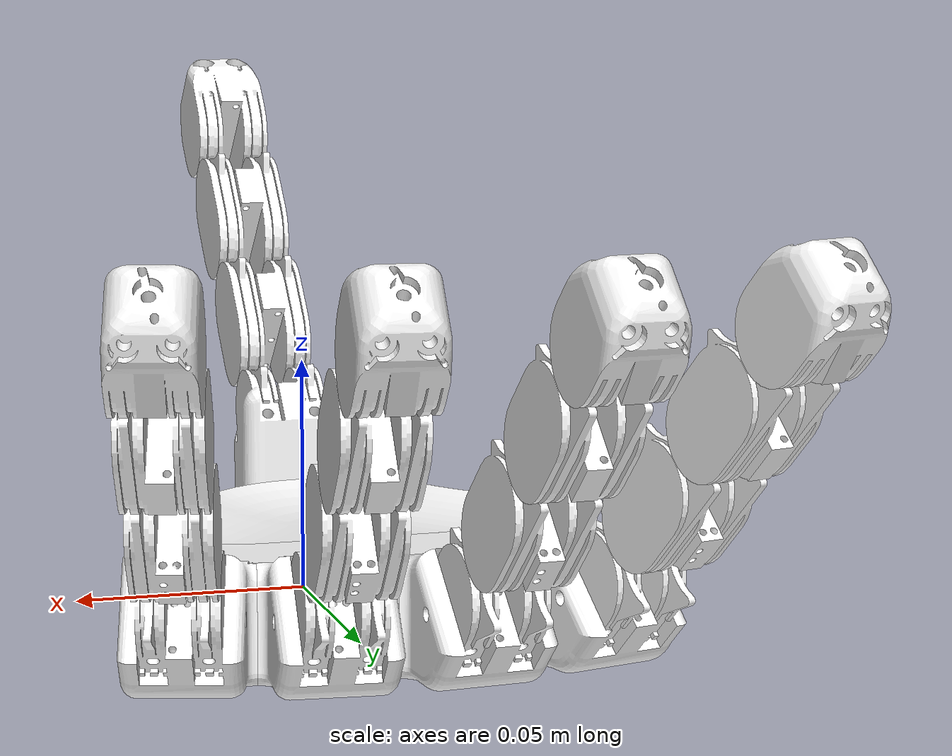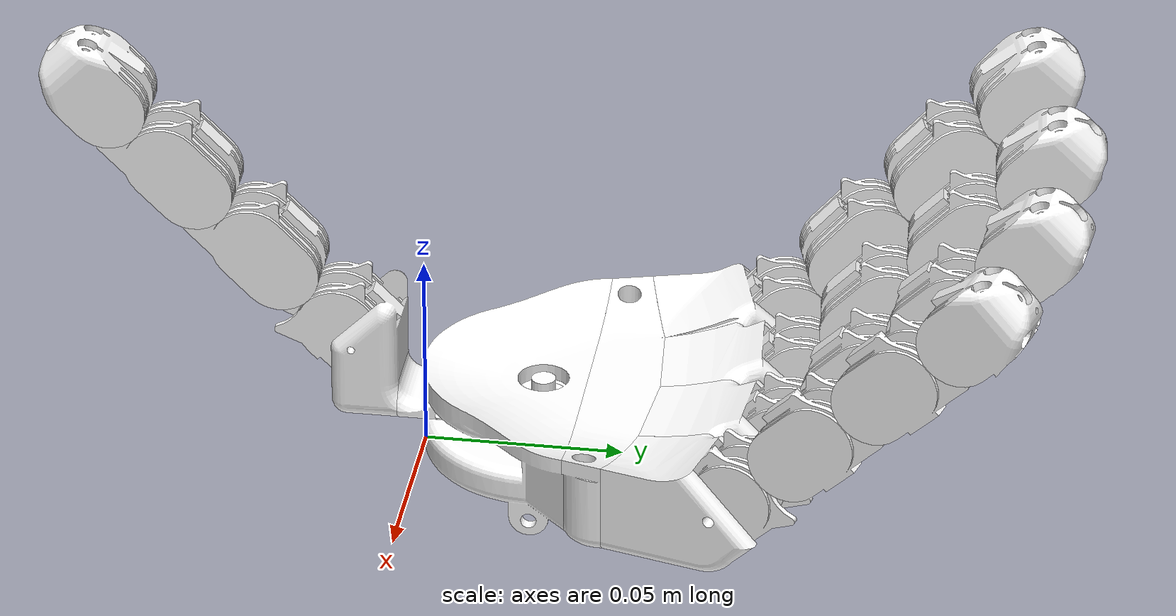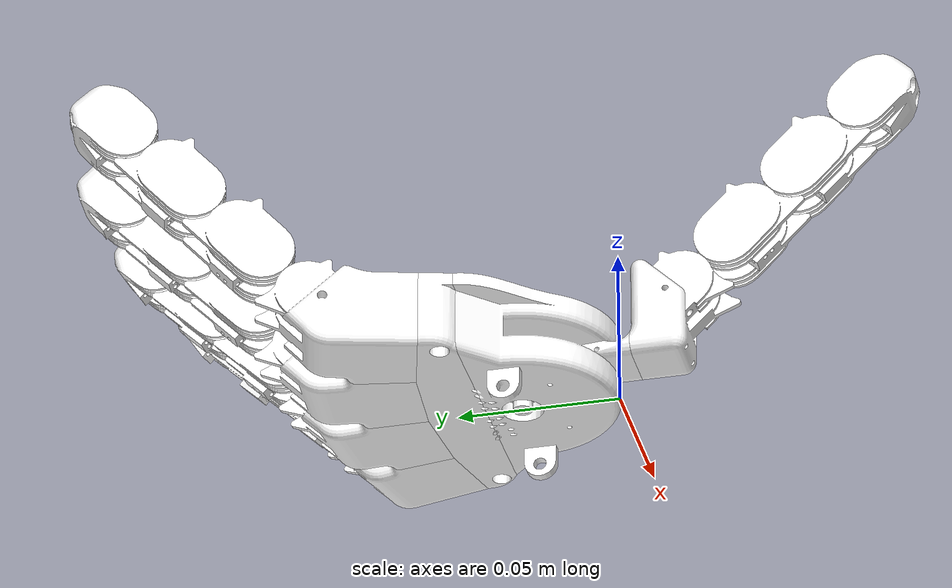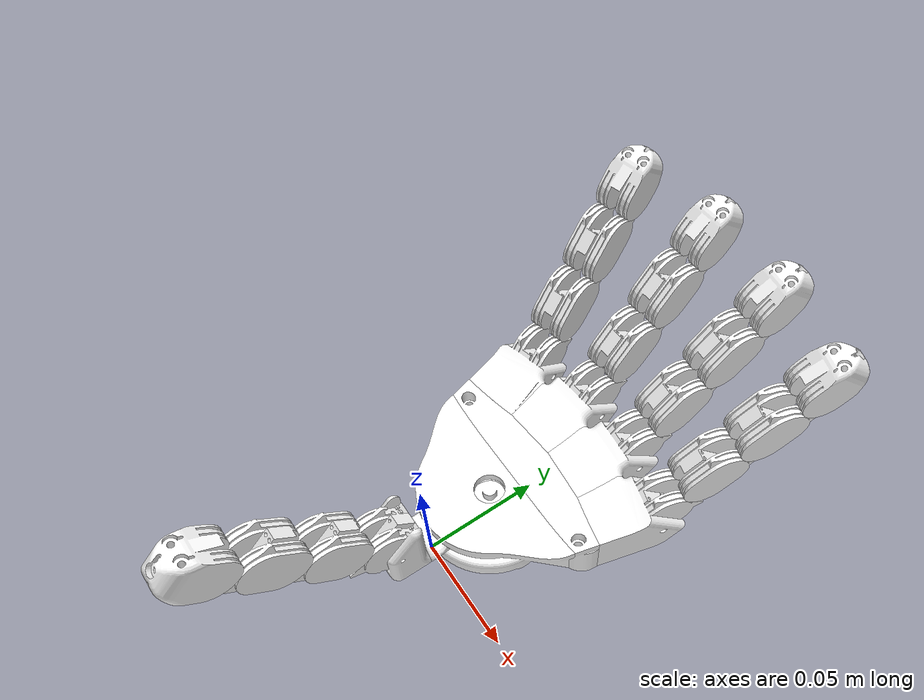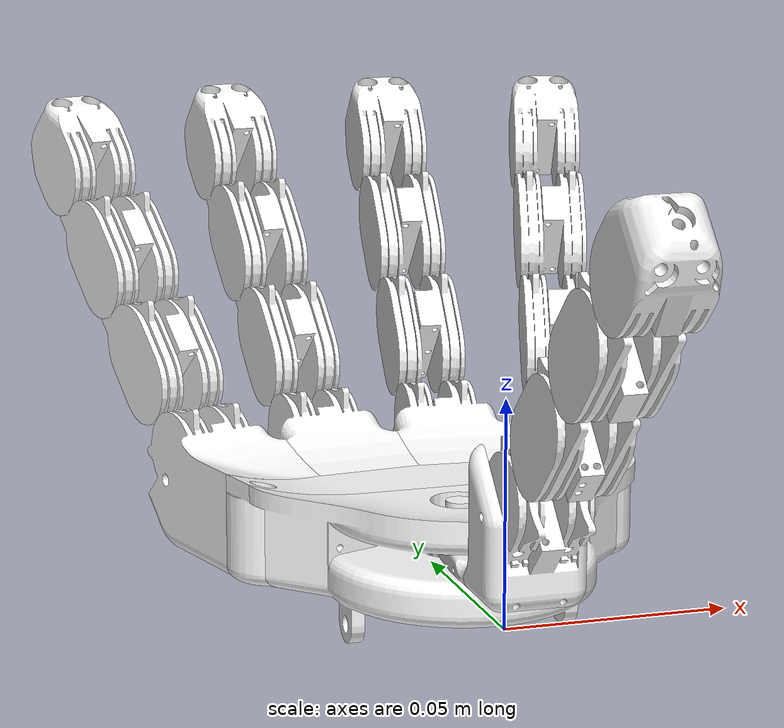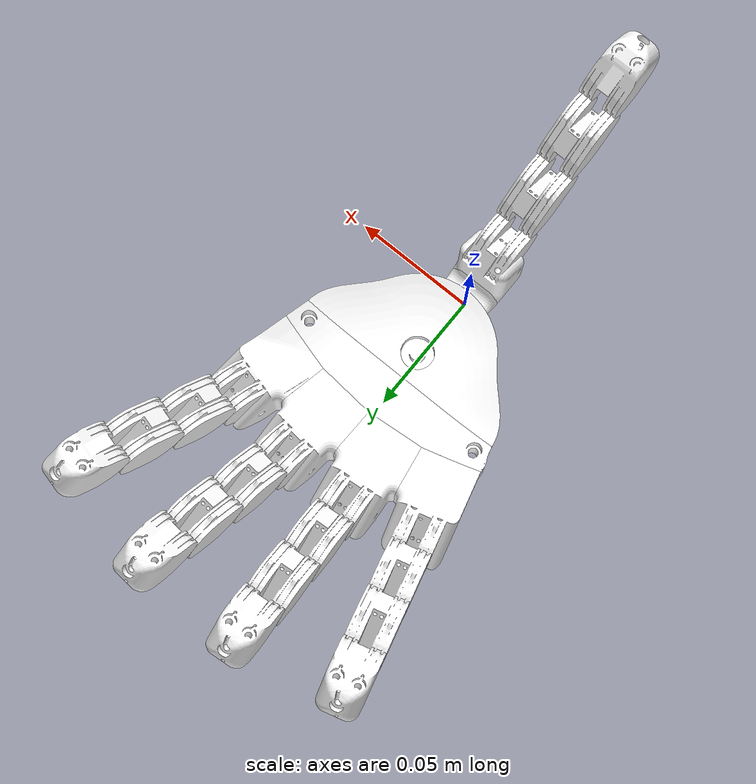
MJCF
<mujoco model="hand">

    <!--SETUP-->
    <compiler autolimits="true" angle="radian"/>
    <!--option collision="all"/-->
    <default>
        <!-- use same geom params as the Shadow Hand model in IsaacGymEnv for now -->
        <geom rgba="1 1 1 1" type="mesh" density="662" friction="0.005 0.005 1" condim="3" margin="0" contype="1" conaffinity="1"/>
        <!-- use same joint params as IsaacGymEnv for now -->
        <!-- TODO: joint damping and position control kp should eventually be set to sysID'ed values -->
        <joint type="hinge" limited="true" damping="0.05" armature="0.001" margin="0.001" frictionloss="0.001"/>
        <!-- actuator configuration -->
        <position ctrllimited="true" forcelimited="true" forcerange="-1 1" kp="2."/>
        <!-- the tendon which limits the two joints creating the rolling joint should be very limited in its length range -->
        <tendon limited="true" range="-0.001 0.001"/>
    </default>

    <!--ASSETS-->
    <asset>

        <mesh name="palm_front" file="mesh/Palm.stl" scale="0.001 0.001 0.001"/>
        <mesh name="palm_back" file="mesh/Palm2.stl" scale="0.001 0.001 0.001"/>

        <mesh name="plate" file="mesh/Plate.stl" scale="0.001 0.001 0.001"/>
        <mesh name="finger1_base" file="mesh/Finger1_base.stl" scale="0.001 0.001 0.001"/>
        <mesh name="finger1_pp" file="mesh/Finger1_pp.stl" scale="0.001 0.001 0.001"/>
        <mesh name="finger1_mp" file="mesh/Finger1_mp.stl" scale="0.001 0.001 0.001"/>
        <mesh name="finger1_dp" file="mesh/Finger1_dp.stl" scale="0.001 0.001 0.001"/>

        <mesh name="finger2_base" file="mesh/Finger2_base.stl" scale="0.001 0.001 0.001"/>
        <mesh name="finger2_pp" file="mesh/Finger2_pp.stl" scale="0.001 0.001 0.001"/>
        <mesh name="finger2_mp" file="mesh/Finger2_mp.stl" scale="0.001 0.001 0.001"/>
        <mesh name="finger2_dp" file="mesh/Finger2_dp.stl" scale="0.001 0.001 0.001"/>

        <mesh name="finger3_base" file="mesh/Finger3_base.stl" scale="0.001 0.001 0.001"/>
        <mesh name="finger3_pp" file="mesh/Finger3_pp.stl" scale="0.001 0.001 0.001"/>
        <mesh name="finger3_mp" file="mesh/Finger3_mp.stl" scale="0.001 0.001 0.001"/>
        <mesh name="finger3_dp" file="mesh/Finger3_dp.stl" scale="0.001 0.001 0.001"/>

        <mesh name="finger4_base" file="mesh/Finger4_base.stl" scale="0.001 0.001 0.001"/>
        <mesh name="finger4_pp" file="mesh/Finger4_pp.stl" scale="0.001 0.001 0.001"/>
        <mesh name="finger4_mp" file="mesh/Finger4_mp.stl" scale="0.001 0.001 0.001"/>
        <mesh name="finger4_dp" file="mesh/Finger4_dp.stl" scale="0.001 0.001 0.001"/>

        <mesh name="finger5_base" file="mesh/Finger5_base.stl" scale="0.001 0.001 0.001"/>
        <mesh name="finger5_pp" file="mesh/Finger5_pp.stl" scale="0.001 0.001 0.001"/>
        <mesh name="finger5_mp" file="mesh/Finger5_mp.stl" scale="0.001 0.001 0.001"/>
        <mesh name="finger5_dp" file="mesh/Finger5_dp.stl" scale="0.001 0.001 0.001"/>

    </asset>

    <!--CONTACT-->
    <contact>

        <exclude body1="hand" body2="plate"/>

        <exclude body1="hand" body2="finger1_pp"/>
        <exclude body1="plate" body2="finger1_pp"/>
        <exclude body1="finger1_pp" body2="finger1_mp"/>
        <exclude body1="finger1_mp" body2="finger1_dp"/>

        <exclude body1="hand" body2="finger2_pp"/>
        <exclude body1="finger2_pp" body2="finger2_mp"/>
        <exclude body1="finger2_mp" body2="finger2_dp"/>

        <exclude body1="hand" body2="finger3_pp"/>
        <exclude body1="finger3_pp" body2="finger3_mp"/>
        <exclude body1="finger3_mp" body2="finger3_dp"/>

        <exclude body1="hand" body2="finger4_pp"/>
        <exclude body1="finger4_pp" body2="finger4_mp"/>
        <exclude body1="finger4_mp" body2="finger4_dp"/>

        <exclude body1="hand" body2="finger5_pp"/>
        <exclude body1="finger5_pp" body2="finger5_mp"/>
        <exclude body1="finger5_mp" body2="finger5_dp"/>

    </contact>

    <!--SENSOR-->
    <sensor>

        <jointpos name="palm2plate" joint="palm2plate"/>
        <jointpos name="finger1_base2pp" joint="finger1_base2pp"/>
        <jointpos name="finger1_pp2mp" joint="finger1_pp2mp"/>
        <jointpos name="finger1_mp2dp" joint="finger1_mp2dp"/>

        <jointpos name="finger2_base2pp" joint="finger2_base2pp"/>
        <jointpos name="finger2_pp2mp" joint="finger2_pp2mp"/>
        <jointpos name="finger2_mp2dp" joint="finger2_mp2dp"/>

        <jointpos name="finger3_base2pp" joint="finger3_base2pp"/>
        <jointpos name="finger3_pp2mp" joint="finger3_pp2mp"/>
        <jointpos name="finger3_mp2dp" joint="finger3_mp2dp"/>

        <jointpos name="finger4_base2pp" joint="finger4_base2pp"/>
        <jointpos name="finger4_pp2mp" joint="finger4_pp2mp"/>
        <jointpos name="finger4_mp2dp" joint="finger4_mp2dp"/>

        <jointpos name="finger5_base2pp" joint="finger5_base2pp"/>
        <jointpos name="finger5_pp2mp" joint="finger5_pp2mp"/>
        <jointpos name="finger5_mp2dp" joint="finger5_mp2dp"/>

    </sensor>

    <!--ACTUATION-->
    <actuator>
        <position name="palm2plate" joint="palm2plate" ctrlrange="-1.13446 1.13446"/>
        <position name="finger1_base2pp" joint="finger1_base2pp" ctrlrange="-0.392699 0.785"/>
        <position name="finger1_pp2mp" joint="finger1_pp2mp" ctrlrange="0 0.785"/>

        <position name="finger2_base2pp" joint="finger2_base2pp" ctrlrange="-0.392699 0.785"/>
        <position name="finger2_pp2mp" joint="finger2_pp2mp" ctrlrange="0 0.785"/>

        <position name="finger3_base2pp" joint="finger3_base2pp" ctrlrange="-0.392699 0.785"/>
        <position name="finger3_pp2mp" joint="finger3_pp2mp" ctrlrange="0 0.785"/>

        <position name="finger4_base2pp" joint="finger4_base2pp" ctrlrange="-0.392699 0.785"/>
        <position name="finger4_pp2mp" joint="finger4_pp2mp" ctrlrange="0 0.785"/>

        <position name="finger5_base2pp" joint="finger5_base2pp" ctrlrange="-0.392699 0.785"/>
        <position name="finger5_pp2mp" joint="finger5_pp2mp" ctrlrange="0 0.785"/>

    </actuator>

    <!--TENDON CONSTRAIN-->
    <tendon>

        <fixed name="finger1_base2pp">
            <joint joint="finger1_base2pp_virt" coef="1"/>
            <joint joint="finger1_base2pp" coef="-1"/>
        </fixed>
        <fixed name="finger1_pp2mp">
            <joint joint="finger1_pp2mp_virt" coef="1"/>
            <joint joint="finger1_pp2mp" coef="-1"/>
        </fixed>
        <fixed name="finger1_jointLink">
            <joint joint="finger1_pp2mp" coef="1"/>
            <joint joint="finger1_mp2dp_virt" coef="-1"/>
        </fixed>
        <fixed name="finger1_mp2dp">
            <joint joint="finger1_mp2dp_virt" coef="1"/>
            <joint joint="finger1_mp2dp" coef="-1"/>
        </fixed>

        <fixed name="finger2_base2pp">
            <joint joint="finger2_base2pp_virt" coef="1"/>
            <joint joint="finger2_base2pp" coef="-1"/>
        </fixed>
        <fixed name="finger2_pp2mp">
            <joint joint="finger2_pp2mp_virt" coef="1"/>
            <joint joint="finger2_pp2mp" coef="-1"/>
        </fixed>
        <fixed name="finger2_jointLink">
            <joint joint="finger2_pp2mp" coef="1"/>
            <joint joint="finger2_mp2dp_virt" coef="-1"/>
        </fixed>
        <fixed name="finger2_mp2dp">
            <joint joint="finger2_mp2dp_virt" coef="1"/>
            <joint joint="finger2_mp2dp" coef="-1"/>
        </fixed>

        <fixed name="finger3_base2pp">
            <joint joint="finger3_base2pp_virt" coef="1"/>
            <joint joint="finger3_base2pp" coef="-1"/>
        </fixed>
        <fixed name="finger3_pp2mp">
            <joint joint="finger3_pp2mp_virt" coef="1"/>
            <joint joint="finger3_pp2mp" coef="-1"/>
        </fixed>
        <fixed name="finger3_jointLink">
            <joint joint="finger3_pp2mp" coef="1"/>
            <joint joint="finger3_mp2dp_virt" coef="-1"/>
        </fixed>
        <fixed name="finger3_mp2dp">
            <joint joint="finger3_mp2dp_virt" coef="1"/>
            <joint joint="finger3_mp2dp" coef="-1"/>
        </fixed>

        <fixed name="finger4_base2pp">
            <joint joint="finger4_base2pp_virt" coef="1"/>
            <joint joint="finger4_base2pp" coef="-1"/>
        </fixed>
        <fixed name="finger4_pp2mp">
            <joint joint="finger4_pp2mp_virt" coef="1"/>
            <joint joint="finger4_pp2mp" coef="-1"/>
        </fixed>
        <fixed name="finger4_jointLink">
            <joint joint="finger4_pp2mp" coef="1"/>
            <joint joint="finger4_mp2dp_virt" coef="-1"/>
        </fixed>
        <fixed name="finger4_mp2dp">
            <joint joint="finger4_mp2dp_virt" coef="1"/>
            <joint joint="finger4_mp2dp" coef="-1"/>
        </fixed>

        <fixed name="finger5_base2pp">
            <joint joint="finger5_base2pp_virt" coef="1"/>
            <joint joint="finger5_base2pp" coef="-1"/>
        </fixed>
        <fixed name="finger5_pp2mp">
            <joint joint="finger5_pp2mp_virt" coef="1"/>
            <joint joint="finger5_pp2mp" coef="-1"/>
        </fixed>
        <fixed name="finger5_jointLink">
            <joint joint="finger5_pp2mp" coef="1"/>
            <joint joint="finger5_mp2dp_virt" coef="-1"/>
        </fixed>
        <fixed name="finger5_mp2dp">
            <joint joint="finger5_mp2dp_virt" coef="1"/>
            <joint joint="finger5_mp2dp" coef="-1"/>
        </fixed>

    </tendon>

    <!--STRUCTURE-->
    <worldbody>

        <light diffuse=".5 .5 .5" pos="0 0 3" dir="0 0 -1"/>

        <body name="hand">

            <geom type="mesh" mesh="palm_front"/>
            <geom type="mesh" mesh="palm_back"/>

            <geom type="mesh" mesh="finger2_base"/>
            <geom type="mesh" mesh="finger3_base"/>
            <geom type="mesh" mesh="finger4_base"/>
            <geom type="mesh" mesh="finger5_base"/>

            <body name="plate">
                <joint name="palm2plate" type="hinge" pos="0 0.03 0.1" axis="0 0 1" range="-1.13446 1.13446"/>
                <geom type="mesh" mesh="plate"/>
                <geom type="mesh" mesh="finger1_base"/>

                <body name="finger1_pp_virt">
                    <joint name="finger1_base2pp_virt" type="hinge" pos="0  -0.020969867811865   0.034642167811865" axis="-1 0 0" range="-0.392699 0.785"/>
                    <inertial pos="0 0 0" mass="0.001" diaginertia="4E-10 4E-10 3E-10" />
                    <body name="finger1_pp">
                        <joint name="finger1_base2pp" pos="0  -0.035112003435596   0.048784303435596" axis="-1 0 0" range="-0.392699 0.785"/>
                        <geom type="mesh" mesh="finger1_pp"/>

                        <body name="finger1_mp_virt">
                            <joint name="finger1_pp2mp_virt" type="hinge" pos="0  -0.042183071247462   0.055855371247462" axis="-1 0 0" range="0 0.785"/>
                            <inertial pos="0 0 0" mass="0.001" diaginertia="4E-10 4E-10 3E-10" />
                            <body name="finger1_mp">
                                <joint name="finger1_pp2mp" pos="0  -0.056325206871193   0.069997506871193" axis="-1 0 0" range="0 0.785"/>
                                <geom type="mesh" mesh="finger1_mp"/>

                                <body name="finger1_dp_virt">
                                    <joint name="finger1_mp2dp_virt" type="hinge" pos="0  -0.063396274683058   0.077068574683058" axis="-1 0 0" range="-0 0.785"/>
                                    <inertial pos="0 0 0" mass="0.001" diaginertia="4E-10 4E-10 3E-10" />
                                    <body name="finger1_dp">
                                        <joint name="finger1_mp2dp" pos="0  -0.077538410306789   0.091210710306789" axis="-1 0 0" range="0 0.785"/>
                                        <geom type="mesh" mesh="finger1_dp"/>
                                        <body name="fingertip1" pos="0  -0.091680545930520   0.105352845930520" euler="-0.7853982     0  -3.1415927"></body>
>
                                    </body>
                                </body>
                            </body>
                        </body>
                    </body>
                </body>
            </body>

            <body name="finger2_pp_virt">
                <joint name="finger2_base2pp_virt" type="hinge" pos="0.043961027018922   0.085683827018922   0.019999967811865" axis="0.965925826289068  -0.258819045102521  0" range="-0.392699 0.785"/>
                <inertial pos="0 0 0" mass="0.001" diaginertia="4E-10 4E-10 3E-10" />
                <body name="finger2_pp">
                    <joint name="finger2_base2pp" pos="0.047621281056767   0.099344081056767   0.034142103435596" axis="0.965925826289068  -0.258819045102521  0" range="-0.392699 0.785"/>
                    <geom type="mesh" mesh="finger2_pp"/>

                    <body name="finger2_mp_virt">
                        <joint name="finger2_pp2mp_virt" type="hinge" pos="0.049451408075689   0.106174208075689   0.041213171247462" axis="0.965925826289068  -0.258819045102521  0" range="0 0.785"/>
                        <inertial pos="0 0 0" mass="0.001" diaginertia="4E-10 4E-10 3E-10" />
                        <body name="finger2_mp">
                            <joint name="finger2_pp2mp" pos="0.053111662113533   0.119834462113533   0.055355306871193" axis="0.965925826289068  -0.258819045102521  0" range="0 0.785"/>
                            <geom type="mesh" mesh="finger2_mp"/>

                            <body name="finger2_dp_virt">
                                <joint name="finger2_mp2dp_virt" type="hinge" pos="0.054941789132455   0.126664589132455   0.062426374683058" axis="0.965925826289068  -0.258819045102521  0" range="0 0.785"/>
                                <inertial pos="0 0 0" mass="0.001" diaginertia="4E-10 4E-10 3E-10" />
                                <body name="finger2_dp">
                                    <joint name="finger2_mp2dp" pos="0.058602043170300   0.140324843170300   0.076568510306789" axis="0.965925826289068  -0.258819045102521  0" range="0 0.785"/>
                                    <geom type="mesh" mesh="finger2_dp"/>
                                    <body name="fingertip2" pos="0.062079284506252   0.153302084506252   0.090003539149334" euler="0.768067518578540  -0.184050041366341  -0.187249099545969"></body>

                                </body>
                            </body>
                        </body>
                    </body>
                </body>
            </body>

            <body name="finger3_pp_virt">
                <joint name="finger3_base2pp_virt" type="hinge" pos="0.015010384167162   0.093188460264028   0.019999967811865" axis="0.996194698091746  -0.087155742747658    0" range="-0.392699 0.785"/>
                <inertial pos="0 0 0" mass="0.001" diaginertia="4E-10 4E-10 3E-10" />
                <body name="finger3_pp">
                    <joint name="finger3_base2pp" pos="0.016242952501487   0.107276780792083   0.034142103435596" axis="0.996194698091746  -0.087155742747658   0" range="-0.392699 0.785"/>
                    <geom type="mesh" mesh="finger3_pp"/>

                    <body name="finger3_mp_virt">
                        <joint name="finger3_pp2mp_virt" type="hinge" pos="0.016859236668649   0.114320941056110   0.041213171247462" axis="0.996194698091746  -0.087155742747658    0" range="0 0.785"/>
                        <inertial pos="0 0 0" mass="0.001" diaginertia="4E-10 4E-10 3E-10" />
                        <body name="finger3_mp">
                            <joint name="finger3_pp2mp" pos="0.018091805002973   0.128409261584166   0.055355306871193" axis="0.996194698091746  -0.087155742747658    0" range="0 0.785"/>
                            <geom type="mesh" mesh="finger3_mp"/>

                            <body name="finger3_dp_virt">
                                <joint name="finger3_mp2dp_virt" type="hinge" pos="0.018708089170135   0.135453421848193   0.062426374683058" axis="0.996194698091746  -0.087155742747658   0" range="0 0.785"/>
                                <inertial pos="0 0 0" mass="0.001" diaginertia="4E-10 4E-10 3E-10" />
                                <body name="finger3_dp">
                                    <joint name="finger3_mp2dp" pos="0.019940657504460   0.149541742376248   0.076568510306789" axis="0.996194698091746  -0.087155742747658   0" range="0 0.785"/>
                                    <geom type="mesh" mesh="finger3_dp"/>
                                    <body name="fingertip3" pos="0.021111597422068   0.162925646877901   0.090003539149334" euler="0.783491887770855  -0.061667494964861  -0.061785087617982"></body>

                                </body>
                            </body>
                        </body>
                    </body>
                </body>
            </body>

            <body name="finger4_pp_virt">
                <joint name="finger4_base2pp_virt" type="hinge" pos="-0.015010384167162   0.093188460264028   0.019999967811865" axis="0.996194698091746   0.087155742747658  0" range="-0.392699 0.785"/>
                <inertial pos="0 0 0" mass="0.001" diaginertia="4E-10 4E-10 3E-10" />
                <body name="finger4_pp">
                    <joint name="finger4_base2pp" pos="-0.016242952501487   0.107276780792083   0.034142103435596" axis="0.996194698091746   0.087155742747658 0" range="-0.392699 0.785"/>
                    <geom type="mesh" mesh="finger4_pp"/>

                    <body name="finger4_mp_virt">
                        <joint name="finger4_pp2mp_virt" type="hinge" pos="-0.016859236668649   0.114320941056110   0.041213171247462" axis="0.996194698091746   0.087155742747658 0" range="0 0.785"/>
                        <inertial pos="0 0 0" mass="0.001" diaginertia="4E-10 4E-10 3E-10" />
                        <body name="finger4_mp">
                            <joint name="finger4_pp2mp" pos="-0.018091805002973   0.128409261584166   0.055355306871193" axis="0.996194698091746   0.087155742747658 0" range="0 0.785"/>
                            <geom type="mesh" mesh="finger4_mp"/>

                            <body name="finger4_dp_virt">
                                <joint name="finger4_mp2dp_virt" type="hinge" pos="-0.018708089170135   0.135453421848193   0.062426374683058" axis="0.996194698091746   0.087155742747658 0" range="0 0.785"/>
                                <inertial pos="0 0 0" mass="0.001" diaginertia="4E-10 4E-10 3E-10" />
                                <body name="finger4_dp">
                                    <joint name="finger4_mp2dp" pos="-0.019940657504460   0.149541742376248   0.076568510306789" axis="0.996194698091746   0.087155742747658 0" range="0 0.785"/>
                                    <geom type="mesh" mesh="finger4_dp"/>
                                    <body name="fingertip4" pos="-0.021111597422068   0.162925646877901   0.090003539149334" euler="0.783491887770855   0.061667494964861   0.061785087617982"></body>

                                </body>
                            </body>
                        </body>
                    </body>
                </body>
            </body>

            <body name="finger5_pp_virt">
                <joint name="finger5_base2pp_virt" type="hinge" pos="-0.043961027018922   0.085683827018922   0.019999967811865" axis="0.965925826289068   0.258819045102521    0" range="-0.392699 0.785"/>
                <inertial pos="0 0 0" mass="0.001" diaginertia="4E-10 4E-10 3E-10" />
                <body name="finger5_pp">
                    <joint name="finger5_base2pp" pos="-0.047621281056767   0.099344081056767   0.034142103435596" axis="0.965925826289068   0.258819045102521   0" range="-0.392699 0.785"/>
                    <geom type="mesh" mesh="finger5_pp"/>

                    <body name="finger5_mp_virt">
                        <joint name="finger5_pp2mp_virt" type="hinge" pos="-0.049451408075689   0.106174208075689   0.041213171247462" axis="0.965925826289068   0.258819045102521   0" range="0 0.785"/>
                        <inertial pos="0 0 0" mass="0.001" diaginertia="4E-10 4E-10 3E-10" />
                        <body name="finger5_mp">
                            <joint name="finger5_pp2mp" pos="-0.053111662113533   0.119834462113533   0.055355306871193" axis="0.965925826289068   0.258819045102521   0" range="0 0.785"/>
                            <geom type="mesh" mesh="finger5_mp"/>

                            <body name="finger5_dp_virt">
                                <joint name="finger5_mp2dp_virt" type="hinge" pos="-0.054941789132455   0.126664589132455   0.062426374683058" axis="0.965925826289068   0.258819045102521   0" range="0 0.785"/>
                                <inertial pos="0 0 0" mass="0.001" diaginertia="4E-10 4E-10 3E-10" />
                                <body name="finger5_dp">
                                    <joint name="finger5_mp2dp" pos="-0.058602043170300   0.140324843170300   0.076568510306789" axis="0.965925826289068   0.258819045102521   0" range="0 0.785"/>
                                    <geom type="mesh" mesh="finger5_dp"/>
                                    <body name="fingertip5" pos="-0.062079284506252   0.153302084506252   0.090003539149334" euler="0.768067518578540   0.184050041366341   0.187249099545969"></body>

                                </body>
                            </body>
                        </body>
                    </body>
                </body>
            </body>

        </body>
    </worldbody>

</mujoco>
